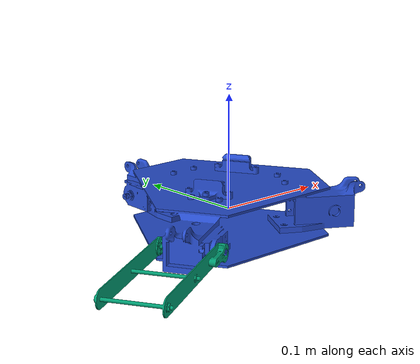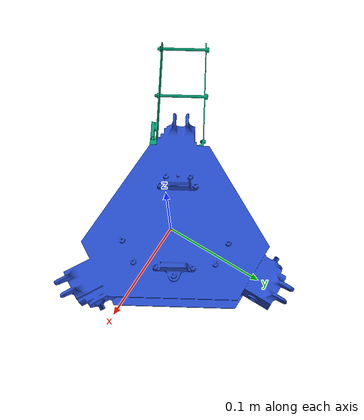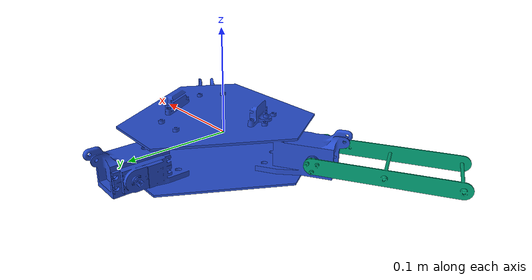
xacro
<?xml version="1.0" ?>
<robot name="landing_gear" xmlns:xacro="http://ros.org/wiki/xacro">

<!-- Base Link -->
<link name="base_link">
    <origin xyz="0 0 0" rpy="0 0 0"/>
        <inertial>
            <mass value="0.1"/>
            <inertia ixx="0.001" ixy="0.0" ixz="0.0" iyy="0.001" iyz="0.0" izz="0.001"/>
        </inertial>
</link>

<joint name="base_link_connection" type="fixed">
    <parent link="base_link"/>
    <child link="base"/>
    <origin xyz="0 0 0" rpy="1.5714 0 0"/>
    <axis xyz="1 0 0"/>
</joint>

<link name="base">
        <visual>
            <origin rpy="0 0 0" xyz="0.01 -0.01 0" />
            <geometry>
                <mesh filename="package://landing_gear_description/meshes/base.stl" scale="0.001 0.001 0.001"/>
            </geometry>
        </visual>
        <collision>
            <origin rpy="0 0 0" xyz="0.01 -0.01 0" />
            <geometry>
                <mesh filename="package://landing_gear_description/meshes/base.stl" scale="0.001 0.001 0.001"/>
            </geometry>
        </collision>
        <inertial>
            <origin xyz="-0.01 0 0" rpy="0 0 0"/>
            <mass value="0.1"/>
            <inertia ixx="0.001" ixy="0.0" ixz="0.0" iyy="0.001" iyz="0.0" izz="0.001"/>
        </inertial>
</link>

<!-- leg 2 -->
<link name="leg_2">
    <visual>
        <origin rpy="0 0 0" xyz="0 -0.136 -0.017" />
        <geometry>
            <mesh filename="package://landing_gear_description/meshes/link1.stl" scale="0.001 0.001 0.001"/>
        </geometry>
    </visual>
    <collision>
        <origin rpy="0 0 0" xyz="0 -0.136 -0.017" />
        <geometry>
            <mesh filename="package://landing_gear_description/meshes/link1.stl" scale="0.001 0.001 0.001"/>
        </geometry>
    </collision>
    <inertial>
        <origin rpy="0 0 0" xyz="0 0 0" />
        <mass value="0.1"/>
        <inertia ixx="0.001" ixy="0.0" ixz="0.0" iyy="0.001" iyz="0.0" izz="0.001"/>
    </inertial>
</link>

<joint name="base_leg_2_joint" type="revolute">
    <parent link="base"/>
    <child link="leg_2"/>
    <!-- the link 1 rotated  ni x rad-->
    <origin xyz="-0.0856 -0.0058 0.04" rpy="-1.5714 -1.0475 0"/>
    <axis xyz="-1 0 0"/>
    <limit effort="100" velocity="1" lower="-1.5714" upper="1.5714"/>
</joint>

<gazebo reference="base" >
    <material> Gazebo/Blue </material>
    <kinematic> true </kinematic>
</gazebo>

</robot>
